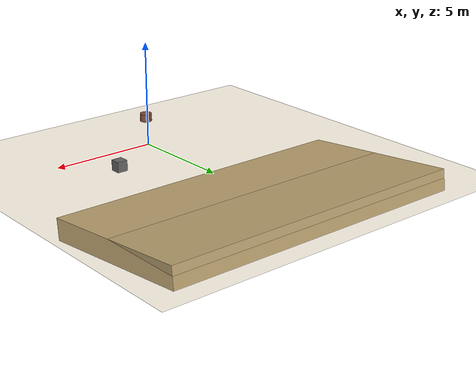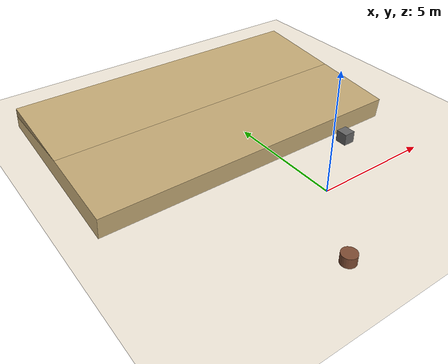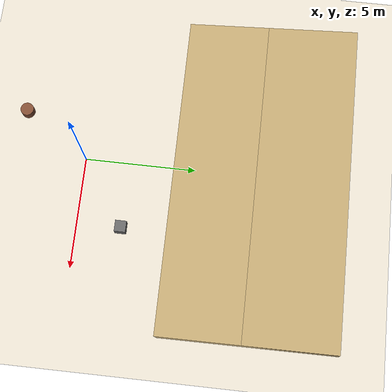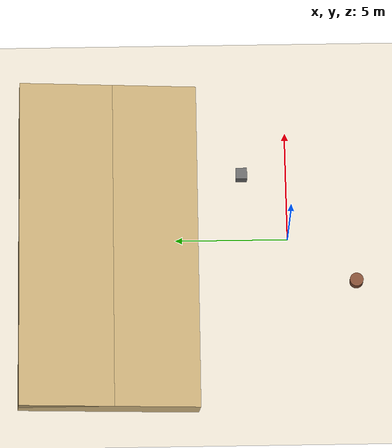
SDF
<sdf version='1.10'>
  <world name='gentle_terrain'>
    <physics name='1ms' type='ignored'>
      <max_step_size>0.05</max_step_size>
      <real_time_factor>1</real_time_factor>
      <real_time_update_rate>100</real_time_update_rate>
    </physics>

    <plugin name='gz::sim::systems::Physics' filename='gz-sim-physics-system'/>
    <plugin name='gz::sim::systems::UserCommands' filename='gz-sim-user-commands-system'/>
    <plugin name='gz::sim::systems::SceneBroadcaster' filename='gz-sim-scene-broadcaster-system'/>
    <plugin name='gz::sim::systems::Sensors' filename='gz-sim-sensors-system'>
      <render_engine>ogre2</render_engine>
    </plugin>
    <plugin name='gz::sim::systems::Contact' filename='gz-sim-contact-system'/>

    <gravity>0 0 -9.8</gravity>
    <magnetic_field>5.5e-06 2.3e-05 -4.2e-05</magnetic_field>
    <atmosphere type='adiabatic'/>

    <scene>
      <ambient>0.4 0.4 0.4 1</ambient>
      <background>0.7 0.7 0.7 1</background>
      <shadows>true</shadows>
    </scene>

    <!-- Main ground plane -->
    <model name='ground_plane'>
      <static>true</static>
      <link name='link'>
        <collision name='collision'>
          <geometry>
            <plane>
              <normal>0 0 1</normal>
              <size>50 50</size>
            </plane>
          </geometry>
          <surface>
            <friction>
              <ode/>
            </friction>
            <bounce/>
            <contact/>
          </surface>
        </collision>
        <visual name='visual'>
          <geometry>
            <plane>
              <normal>0 0 1</normal>
              <size>50 50</size>
            </plane>
          </geometry>
          <material>
            <diffuse>0.8 0.7 0.5 1.0</diffuse>
            <specular>0.1 0.1 0.1 1.0</specular>
          </material>
        </visual>
      </link>
    </model>

    <!-- Very gentle slope/hill -->
    <model name='gentle_hill'>
      <pose>0 8 -0.5 0.1 0 0</pose>
      <static>true</static>
      <link name='link'>
        <collision name='collision'>
          <geometry>
            <box><size>15 8 1</size></box>
          </geometry>
        </collision>
        <visual name='visual'>
          <geometry>
            <box><size>15 8 1</size></box>
          </geometry>
          <material>
            <diffuse>0.75 0.65 0.45 1.0</diffuse>
          </material>
        </visual>
      </link>
    </model>

    <!-- Small obstacles for navigation challenge -->
    <model name='obstacle_1'>
      <pose>3 2 0.25 0 0 0</pose>
      <static>true</static>
      <link name='link'>
        <collision name='collision'>
          <geometry>
            <box><size>0.5 0.5 0.5</size></box>
          </geometry>
        </collision>
        <visual name='visual'>
          <geometry>
            <box><size>0.5 0.5 0.5</size></box>
          </geometry>
          <material>
            <diffuse>0.4 0.4 0.4 1.0</diffuse>
          </material>
        </visual>
      </link>
    </model>

    <model name='obstacle_2'>
      <pose>-2 -3 0.2 0 0 0.5</pose>
      <static>true</static>
      <link name='link'>
        <collision name='collision'>
          <geometry>
            <cylinder><radius>0.3</radius><length>0.4</length></cylinder>
          </geometry>
        </collision>
        <visual name='visual'>
          <geometry>
            <cylinder><radius>0.3</radius><length>0.4</length></cylinder>
          </geometry>
          <material>
            <diffuse>0.5 0.3 0.2 1.0</diffuse>
          </material>
        </visual>
      </link>
    </model>

    <!-- Sun lighting -->
    <light name='sun' type='directional'>
      <cast_shadows>true</cast_shadows>
      <pose>0 0 10 0 0 0</pose>
      <diffuse>0.8 0.8 0.8 1</diffuse>
      <specular>0.2 0.2 0.2 1</specular>
      <direction>-0.5 0.1 -0.9</direction>
    </light>

  </world>
</sdf>
